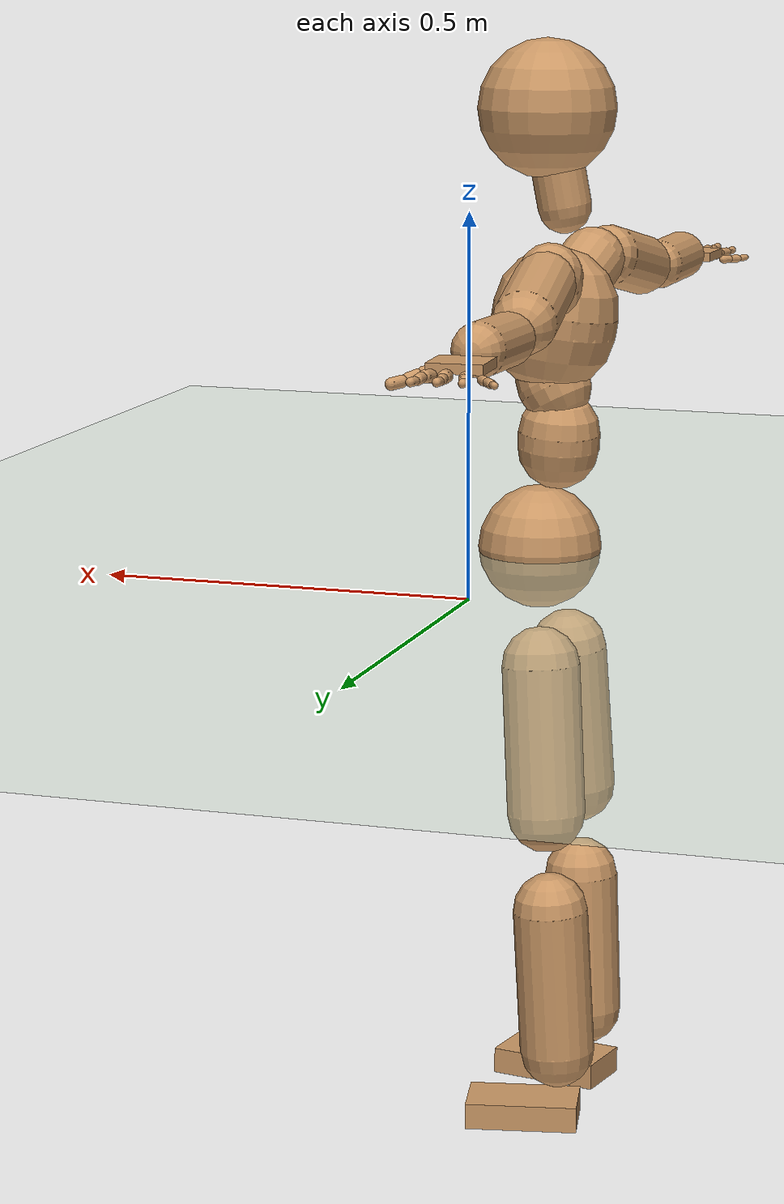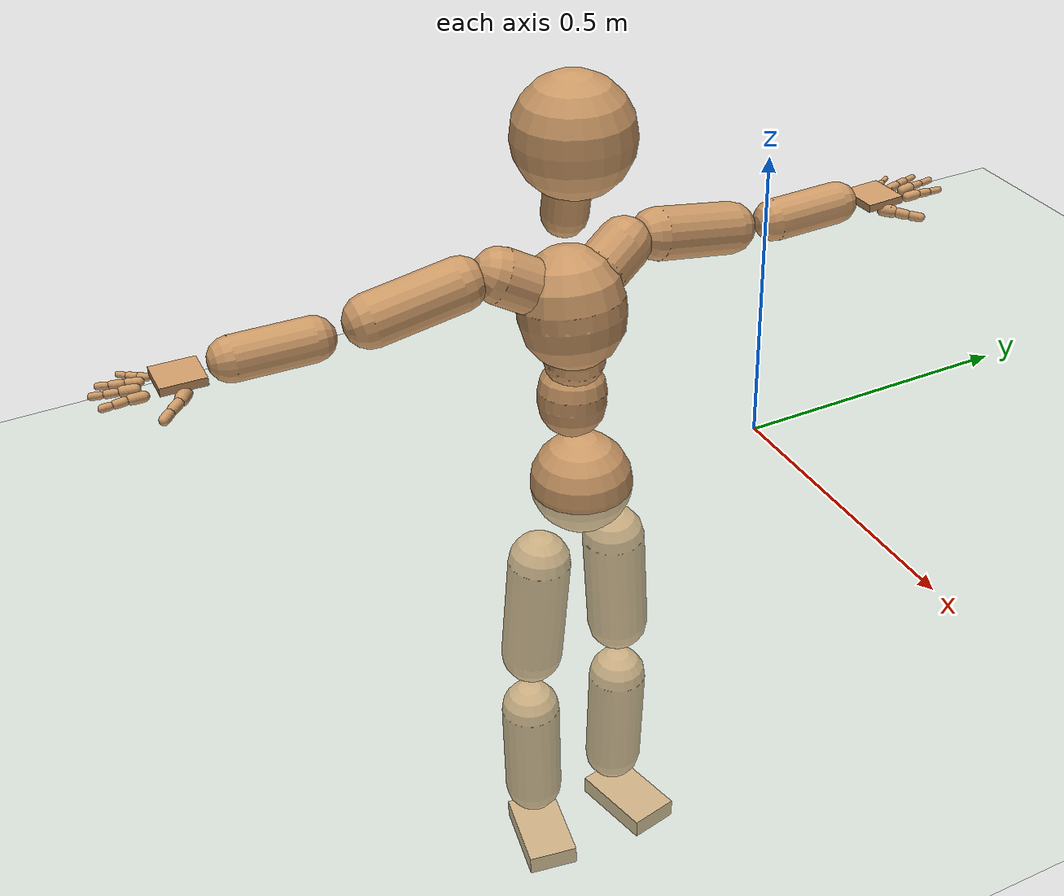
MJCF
<mujoco model="humanoid">
  <compiler coordinate="local" angle="radian"/>
  <default>
    <joint damping="0.0" armature="0.01" stiffness="0.0" limited="true"/>
    <geom conaffinity="1" condim="3" contype="7" margin="0.001" rgba="0.8 0.6 .4 1"/>
  </default>
  <asset>
    <texture type="skybox" builtin="gradient" rgb1=".4 .5 .6" rgb2="0 0 0" width="100" height="100"/>
    <texture builtin="flat" height="1278" mark="cross" markrgb="1 1 1" name="texgeom" random="0.01" rgb1="0.8 0.6 0.4" rgb2="0.8 0.6 0.4" type="cube" width="127"/>
    <texture builtin="checker" height="100" name="texplane" rgb1="0 0 0" rgb2="0.8 0.8 0.8" type="2d" width="100"/>
    <material name="MatPlane" reflectance="0.5" shininess="1" specular="1" texrepeat="60 60" texture="texplane"/>
    <material name="geom" texture="texgeom" texuniform="true"/>
  </asset>
  <worldbody>
    <light cutoff="100" diffuse="1 1 1" dir="-0 0 -1.3" directional="true" exponent="1" pos="0 0 1.3" specular=".1 .1 .1"/>
    <geom conaffinity="1" condim="3" name="floor" pos="0 0 0" rgba="0.8 0.9 0.8 1" size="100 100 .2" type="plane" material="MatPlane"/>
    <body name="Pelvis" pos="0.0003 -0.3356 0.0061">
      <freejoint name="Pelvis"/>
      <geom type="sphere" contype="1" conaffinity="1" density="500" size="0.0850" pos="0.0000 0.0000 0.0000" name="Pelvis"/>
      <body name="L_Hip" pos="-0.0181 0.0658 -0.083">
        <joint name="L_Hip_x" type="hinge" pos="0 0 0" axis="1 0 0" stiffness="800" damping="80" armature="0.02" range="-180.0000 180.0000"/>
        <joint name="L_Hip_y" type="hinge" pos="0 0 0" axis="0 1 0" stiffness="800" damping="80" armature="0.02" range="-180.0000 180.0000"/>
        <joint name="L_Hip_z" type="hinge" pos="0 0 0" axis="0 0 1" stiffness="800" damping="80" armature="0.02" range="-180.0000 180.0000"/>
        <geom type="capsule" contype="1" conaffinity="1" density="500" fromto="-0.0045 0.0049 -0.0685 -0.0180 0.0195 -0.2741" size="0.0535" name="L_Hip"/>
        <body name="L_Knee" pos="-0.0225 0.0244 -0.3427">
          <joint name="L_Knee_x" type="hinge" pos="0 0 0" axis="1 0 0" stiffness="800" damping="80" armature="0.02" range="-180.0000 180.0000"/>
          <joint name="L_Knee_y" type="hinge" pos="0 0 0" axis="0 1 0" stiffness="800" damping="80" armature="0.02" range="-180.0000 180.0000"/>
          <joint name="L_Knee_z" type="hinge" pos="0 0 0" axis="0 0 1" stiffness="800" damping="80" armature="0.02" range="-180.0000 180.0000"/>
          <geom type="capsule" contype="1" conaffinity="1" density="500" fromto="-0.0034 -0.0017 -0.0682 -0.0135 -0.0069 -0.2729" size="0.0516" name="L_Knee"/>
          <body name="L_Ankle" pos="-0.0169 -0.0086 -0.3412">
            <joint name="L_Ankle_x" type="hinge" pos="0 0 0" axis="1 0 0" stiffness="800" damping="80" armature="0.02" range="-180.0000 180.0000"/>
            <joint name="L_Ankle_y" type="hinge" pos="0 0 0" axis="0 1 0" stiffness="800" damping="80" armature="0.02" range="-180.0000 180.0000"/>
            <joint name="L_Ankle_z" type="hinge" pos="0 0 0" axis="0 0 1" stiffness="800" damping="80" armature="0.02" range="-180.0000 180.0000"/>
            <geom type="box" contype="1" conaffinity="1" density="500" pos="0.0498 0.0102 -0.0196" size="0.0774 0.0441 0.018" quat="0.9949 0.0000 0.0000 0.1013" name="L_Ankle"/>
            <body name="L_Toe" pos="0.0996 0.0205 -0.0393">
              <joint name="L_Toe_x" type="hinge" pos="0 0 0" axis="1 0 0" stiffness="500" damping="50" armature="0.02" range="-180.0000 180.0000"/>
              <joint name="L_Toe_y" type="hinge" pos="0 0 0" axis="0 1 0" stiffness="500" damping="50" armature="0.02" range="-180.0000 180.0000"/>
              <joint name="L_Toe_z" type="hinge" pos="0 0 0" axis="0 0 1" stiffness="500" damping="50" armature="0.02" range="-180.0000 180.0000"/>
              <geom type="box" contype="1" conaffinity="1" density="500" pos="0.0000 0.0000 0.0210" size="0.0009 0.0022 0.001" quat="0.9941 0.0000 0.0000 0.1088" name="L_Toe"/>
            </body>
          </body>
        </body>
      </body>
      <body name="R_Hip" pos="-0.0196 -0.0648 -0.0896">
        <joint name="R_Hip_x" type="hinge" pos="0 0 0" axis="1 0 0" stiffness="800" damping="80" armature="0.02" range="-180.0000 180.0000"/>
        <joint name="R_Hip_y" type="hinge" pos="0 0 0" axis="0 1 0" stiffness="800" damping="80" armature="0.02" range="-180.0000 180.0000"/>
        <joint name="R_Hip_z" type="hinge" pos="0 0 0" axis="0 0 1" stiffness="800" damping="80" armature="0.02" range="-180.0000 180.0000"/>
        <geom type="capsule" contype="1" conaffinity="1" density="500" fromto="-0.0033 -0.0056 -0.0676 -0.0134 -0.0224 -0.2705" size="0.0533" name="R_Hip"/>
        <body name="R_Knee" pos="-0.0167 -0.028 -0.3381">
          <joint name="R_Knee_x" type="hinge" pos="0 0 0" axis="1 0 0" stiffness="800" damping="80" armature="0.02" range="-180.0000 180.0000"/>
          <joint name="R_Knee_y" type="hinge" pos="0 0 0" axis="0 1 0" stiffness="800" damping="80" armature="0.02" range="-180.0000 180.0000"/>
          <joint name="R_Knee_z" type="hinge" pos="0 0 0" axis="0 0 1" stiffness="800" damping="80" armature="0.02" range="-180.0000 180.0000"/>
          <geom type="capsule" contype="1" conaffinity="1" density="500" fromto="-0.0026 0.0009 -0.0666 -0.0104 0.0037 -0.2665" size="0.0516" name="R_Knee"/>
          <body name="R_Ankle" pos="-0.013 0.0046 -0.3331">
            <joint name="R_Ankle_x" type="hinge" pos="0 0 0" axis="1 0 0" stiffness="800" damping="80" armature="0.02" range="-180.0000 180.0000"/>
            <joint name="R_Ankle_y" type="hinge" pos="0 0 0" axis="0 1 0" stiffness="800" damping="80" armature="0.02" range="-180.0000 180.0000"/>
            <joint name="R_Ankle_z" type="hinge" pos="0 0 0" axis="0 0 1" stiffness="800" damping="80" armature="0.02" range="-180.0000 180.0000"/>
            <geom type="box" contype="1" conaffinity="1" density="500" pos="0.0466 -0.0084 -0.0214" size="0.0774 0.0441 0.0181" quat="0.9960 0.0000 0.0000 -0.0892" name="R_Ankle"/>
            <body name="R_Toe" pos="0.0933 -0.0168 -0.0429">
              <joint name="R_Toe_x" type="hinge" pos="0 0 0" axis="1 0 0" stiffness="500" damping="50" armature="0.02" range="-180.0000 180.0000"/>
              <joint name="R_Toe_y" type="hinge" pos="0 0 0" axis="0 1 0" stiffness="500" damping="50" armature="0.02" range="-180.0000 180.0000"/>
              <joint name="R_Toe_z" type="hinge" pos="0 0 0" axis="0 0 1" stiffness="500" damping="50" armature="0.02" range="-180.0000 180.0000"/>
              <geom type="box" contype="1" conaffinity="1" density="500" pos="0.0000 0.0000 0.0228" size="0.0009 0.0022 0.001" quat="0.9970 0.0000 0.0000 -0.0772" name="R_Toe"/>
            </body>
          </body>
        </body>
      </body>
      <body name="Torso" pos="-0.0217 -0.0044 0.0934">
        <joint name="Torso_x" type="hinge" pos="0 0 0" axis="1 0 0" stiffness="1000" damping="100" armature="0.02" range="-180.0000 180.0000"/>
        <joint name="Torso_y" type="hinge" pos="0 0 0" axis="0 1 0" stiffness="1000" damping="100" armature="0.02" range="-180.0000 180.0000"/>
        <joint name="Torso_z" type="hinge" pos="0 0 0" axis="0 0 1" stiffness="1000" damping="100" armature="0.02" range="-180.0000 180.0000"/>
        <geom type="capsule" contype="1" conaffinity="1" density="500" fromto="-0.0046 0.0048 0.0676 -0.0031 0.0032 0.0451" size="0.0561" name="Torso"/>
        <body name="Spine" pos="-0.0077 0.008 0.1127">
          <joint name="Spine_x" type="hinge" pos="0 0 0" axis="1 0 0" stiffness="1000" damping="100" armature="0.02" range="-180.0000 180.0000"/>
          <joint name="Spine_y" type="hinge" pos="0 0 0" axis="0 1 0" stiffness="1000" damping="100" armature="0.02" range="-180.0000 180.0000"/>
          <joint name="Spine_z" type="hinge" pos="0 0 0" axis="0 0 1" stiffness="1000" damping="100" armature="0.02" range="-180.0000 180.0000"/>
          <geom type="capsule" contype="1" conaffinity="1" density="500" fromto="0.0136 -0.0026 0.0254 0.0091 -0.0017 0.0169" size="0.0502" name="Spine"/>
          <body name="Chest" pos="0.0227 -0.0043 0.0423">
            <joint name="Chest_x" type="hinge" pos="0 0 0" axis="1 0 0" stiffness="1000" damping="100" armature="0.02" range="-180.0000 180.0000"/>
            <joint name="Chest_y" type="hinge" pos="0 0 0" axis="0 1 0" stiffness="1000" damping="100" armature="0.02" range="-180.0000 180.0000"/>
            <joint name="Chest_z" type="hinge" pos="0 0 0" axis="0 0 1" stiffness="1000" damping="100" armature="0.02" range="-180.0000 180.0000"/>
            <geom type="capsule" contype="1" conaffinity="1" density="500" fromto="-0.0130 -0.0015 0.0797 -0.0087 -0.0010 0.0531" size="0.0858" name="Chest"/>
            <body name="Neck" pos="-0.0292 -0.005 0.1871">
              <joint name="Neck_x" type="hinge" pos="0 0 0" axis="1 0 0" stiffness="500" damping="50" armature="0.02" range="-180.0000 180.0000"/>
              <joint name="Neck_y" type="hinge" pos="0 0 0" axis="0 1 0" stiffness="500" damping="50" armature="0.02" range="-180.0000 180.0000"/>
              <joint name="Neck_z" type="hinge" pos="0 0 0" axis="0 0 1" stiffness="500" damping="50" armature="0.02" range="-180.0000 180.0000"/>
              <geom type="capsule" contype="1" conaffinity="1" density="500" fromto="0.0059 0.0015 0.0329 0.0236 0.0061 0.1316" size="0.0366" name="Neck"/>
              <body name="Head" pos="0.0295 0.0076 0.1645">
                <joint name="Head_x" type="hinge" pos="0 0 0" axis="1 0 0" stiffness="500" damping="50" armature="0.02" range="-180.0000 180.0000"/>
                <joint name="Head_y" type="hinge" pos="0 0 0" axis="0 1 0" stiffness="500" damping="50" armature="0.02" range="-180.0000 180.0000"/>
                <joint name="Head_z" type="hinge" pos="0 0 0" axis="0 0 1" stiffness="500" damping="50" armature="0.02" range="-180.0000 180.0000"/>
                <geom type="sphere" contype="1" conaffinity="1" density="500" size="0.0942" pos="0.0000 0.0000 0.0000" name="Head"/>
              </body>
            </body>
            <body name="L_Thorax" pos="-0.015 0.0437 0.1076">
              <joint name="L_Thorax_x" type="hinge" pos="0 0 0" axis="1 0 0" stiffness="500" damping="50" armature="0.02" range="-180.0000 180.0000"/>
              <joint name="L_Thorax_y" type="hinge" pos="0 0 0" axis="0 1 0" stiffness="500" damping="50" armature="0.02" range="-180.0000 180.0000"/>
              <joint name="L_Thorax_z" type="hinge" pos="0 0 0" axis="0 0 1" stiffness="500" damping="50" armature="0.02" range="-180.0000 180.0000"/>
              <geom type="capsule" contype="1" conaffinity="1" density="500" fromto="-0.0045 0.0145 0.0078 -0.0182 0.0581 0.0311" size="0.044" name="L_Thorax"/>
              <body name="L_Shoulder" pos="-0.0227 0.0726 0.0388">
                <joint name="L_Shoulder_x" type="hinge" pos="0 0 0" axis="1 0 0" stiffness="500" damping="50" armature="0.02" range="-180.0000 180.0000"/>
                <joint name="L_Shoulder_y" type="hinge" pos="0 0 0" axis="0 1 0" stiffness="500" damping="50" armature="0.02" range="-180.0000 180.0000"/>
                <joint name="L_Shoulder_z" type="hinge" pos="0 0 0" axis="0 0 1" stiffness="500" damping="50" armature="0.02" range="-180.0000 180.0000"/>
                <geom type="capsule" contype="1" conaffinity="1" density="500" fromto="-0.0051 0.0482 -0.0104 -0.0205 0.1929 -0.0415" size="0.0423" name="L_Shoulder"/>
                <body name="L_Elbow" pos="-0.0256 0.2411 -0.0518">
                  <joint name="L_Elbow_x" type="hinge" pos="0 0 0" axis="1 0 0" stiffness="500" damping="50" armature="0.02" range="-720.0000 720.0000"/>
                  <joint name="L_Elbow_y" type="hinge" pos="0 0 0" axis="0 1 0" stiffness="500" damping="50" armature="0.02" range="-720.0000 720.0000"/>
                  <joint name="L_Elbow_z" type="hinge" pos="0 0 0" axis="0 0 1" stiffness="500" damping="50" armature="0.02" range="-720.0000 720.0000"/>
                  <geom type="capsule" contype="1" conaffinity="1" density="500" fromto="0.0004 0.0405 0.0010 0.0014 0.1620 0.0040" size="0.0346" name="L_Elbow"/>
                  <body name="L_Wrist" pos="0.0018 0.2025 0.0049">
                    <joint name="L_Wrist_x" type="hinge" pos="0 0 0" axis="1 0 0" stiffness="300" damping="30" armature="0.02" range="-180.0000 180.0000"/>
                    <joint name="L_Wrist_y" type="hinge" pos="0 0 0" axis="0 1 0" stiffness="300" damping="30" armature="0.02" range="-180.0000 180.0000"/>
                    <joint name="L_Wrist_z" type="hinge" pos="0 0 0" axis="0 0 1" stiffness="300" damping="30" armature="0.02" range="-180.0000 180.0000"/>
                    <geom type="box" contype="1" conaffinity="1" density="500" pos="-0.0020 0.0367 -0.0081" size="0.0348 0.0355 0.0064" quat="0.7264 0.0000 0.0000 -0.6873" name="L_Wrist"/>
                    <body name="L_Index1" pos="0.0181 0.0867 -0.0141">
                      <joint name="L_Index1_x" type="hinge" pos="0 0 0" axis="1 0 0" stiffness="100" damping="10" armature="0.02" range="-180.0000 180.0000"/>
                      <joint name="L_Index1_y" type="hinge" pos="0 0 0" axis="0 1 0" stiffness="100" damping="10" armature="0.02" range="-180.0000 180.0000"/>
                      <joint name="L_Index1_z" type="hinge" pos="0 0 0" axis="0 0 1" stiffness="100" damping="10" armature="0.02" range="-180.0000 180.0000"/>
                      <geom type="capsule" contype="1" conaffinity="1" density="500" fromto="0.0005 0.0058 0.0005 0.0021 0.0233 0.0019" size="0.0081" name="L_Index1"/>
                      <body name="L_Index2" pos="0.0027 0.0292 0.0024">
                        <joint name="L_Index2_x" type="hinge" pos="0 0 0" axis="1 0 0" stiffness="100" damping="10" armature="0.02" range="-180.0000 180.0000"/>
                        <joint name="L_Index2_y" type="hinge" pos="0 0 0" axis="0 1 0" stiffness="100" damping="10" armature="0.02" range="-180.0000 180.0000"/>
                        <joint name="L_Index2_z" type="hinge" pos="0 0 0" axis="0 0 1" stiffness="100" damping="10" armature="0.02" range="-180.0000 180.0000"/>
                        <geom type="capsule" contype="1" conaffinity="1" density="500" fromto="0.0001 0.0042 -0.0003 0.0003 0.0166 -0.0011" size="0.0068" name="L_Index2"/>
                        <body name="L_Index3" pos="0.0004 0.0208 -0.0014">
                          <joint name="L_Index3_x" type="hinge" pos="0 0 0" axis="1 0 0" stiffness="100" damping="10" armature="0.02" range="-180.0000 180.0000"/>
                          <joint name="L_Index3_y" type="hinge" pos="0 0 0" axis="0 1 0" stiffness="100" damping="10" armature="0.02" range="-180.0000 180.0000"/>
                          <joint name="L_Index3_z" type="hinge" pos="0 0 0" axis="0 0 1" stiffness="100" damping="10" armature="0.02" range="-180.0000 180.0000"/>
                          <geom type="capsule" contype="1" conaffinity="1" density="500" fromto="0.0005 0.0046 0.0001 0.0019 0.0182 0.0005" size="0.0056" name="L_Index3"/>
                        </body>
                      </body>
                    </body>
                    <body name="L_Middle1" pos="-0.0023 0.0929 -0.0123">
                      <joint name="L_Middle1_x" type="hinge" pos="0 0 0" axis="1 0 0" stiffness="100" damping="10" armature="0.02" range="-180.0000 180.0000"/>
                      <joint name="L_Middle1_y" type="hinge" pos="0 0 0" axis="0 1 0" stiffness="100" damping="10" armature="0.02" range="-180.0000 180.0000"/>
                      <joint name="L_Middle1_z" type="hinge" pos="0 0 0" axis="0 0 1" stiffness="100" damping="10" armature="0.02" range="-180.0000 180.0000"/>
                      <geom type="capsule" contype="1" conaffinity="1" density="500" fromto="-0.0007 0.0055 0.0002 -0.0029 0.0220 0.0009" size="0.0083" name="L_Middle1"/>
                      <body name="L_Middle2" pos="-0.0037 0.0274 0.0011">
                        <joint name="L_Middle2_x" type="hinge" pos="0 0 0" axis="1 0 0" stiffness="100" damping="10" armature="0.02" range="-180.0000 180.0000"/>
                        <joint name="L_Middle2_y" type="hinge" pos="0 0 0" axis="0 1 0" stiffness="100" damping="10" armature="0.02" range="-180.0000 180.0000"/>
                        <joint name="L_Middle2_z" type="hinge" pos="0 0 0" axis="0 0 1" stiffness="100" damping="10" armature="0.02" range="-180.0000 180.0000"/>
                        <geom type="capsule" contype="1" conaffinity="1" density="500" fromto="-0.0007 0.0043 -0.0001 -0.0028 0.0171 -0.0003" size="0.0063" name="L_Middle2"/>
                        <body name="L_Middle3" pos="-0.0035 0.0214 -0.0004">
                          <joint name="L_Middle3_x" type="hinge" pos="0 0 0" axis="1 0 0" stiffness="100" damping="10" armature="0.02" range="-180.0000 180.0000"/>
                          <joint name="L_Middle3_y" type="hinge" pos="0 0 0" axis="0 1 0" stiffness="100" damping="10" armature="0.02" range="-180.0000 180.0000"/>
                          <joint name="L_Middle3_z" type="hinge" pos="0 0 0" axis="0 0 1" stiffness="100" damping="10" armature="0.02" range="-180.0000 180.0000"/>
                          <geom type="capsule" contype="1" conaffinity="1" density="500" fromto="-0.0003 0.0047 0.0003 -0.0012 0.0187 0.0013" size="0.0055" name="L_Middle3"/>
                        </body>
                      </body>
                    </body>
                    <body name="L_Pinky1" pos="-0.0369 0.0705 -0.0191">
                      <joint name="L_Pinky1_x" type="hinge" pos="0 0 0" axis="1 0 0" stiffness="100" damping="10" armature="0.02" range="-180.0000 180.0000"/>
                      <joint name="L_Pinky1_y" type="hinge" pos="0 0 0" axis="0 1 0" stiffness="100" damping="10" armature="0.02" range="-180.0000 180.0000"/>
                      <joint name="L_Pinky1_z" type="hinge" pos="0 0 0" axis="0 0 1" stiffness="100" damping="10" armature="0.02" range="-180.0000 180.0000"/>
                      <geom type="capsule" contype="1" conaffinity="1" density="500" fromto="-0.0022 0.0026 -0.0001 -0.0087 0.0106 -0.0003" size="0.006" name="L_Pinky1"/>
                      <body name="L_Pinky2" pos="-0.0109 0.0132 -0.0003">
                        <joint name="L_Pinky2_x" type="hinge" pos="0 0 0" axis="1 0 0" stiffness="100" damping="10" armature="0.02" range="-180.0000 180.0000"/>
                        <joint name="L_Pinky2_y" type="hinge" pos="0 0 0" axis="0 1 0" stiffness="100" damping="10" armature="0.02" range="-180.0000 180.0000"/>
                        <joint name="L_Pinky2_z" type="hinge" pos="0 0 0" axis="0 0 1" stiffness="100" damping="10" armature="0.02" range="-180.0000 180.0000"/>
                        <geom type="capsule" contype="1" conaffinity="1" density="500" fromto="-0.0021 0.0027 -0.0001 -0.0086 0.0110 -0.0005" size="0.0058" name="L_Pinky2"/>
                        <body name="L_Pinky3" pos="-0.0107 0.0137 -0.0007">
                          <joint name="L_Pinky3_x" type="hinge" pos="0 0 0" axis="1 0 0" stiffness="100" damping="10" armature="0.02" range="-180.0000 180.0000"/>
                          <joint name="L_Pinky3_y" type="hinge" pos="0 0 0" axis="0 1 0" stiffness="100" damping="10" armature="0.02" range="-180.0000 180.0000"/>
                          <joint name="L_Pinky3_z" type="hinge" pos="0 0 0" axis="0 0 1" stiffness="100" damping="10" armature="0.02" range="-180.0000 180.0000"/>
                          <geom type="capsule" contype="1" conaffinity="1" density="500" fromto="-0.0017 0.0031 0.0003 -0.0070 0.0126 0.0011" size="0.0045" name="L_Pinky3"/>
                        </body>
                      </body>
                    </body>
                    <body name="L_Ring1" pos="-0.0225 0.0822 -0.0146">
                      <joint name="L_Ring1_x" type="hinge" pos="0 0 0" axis="1 0 0" stiffness="100" damping="10" armature="0.02" range="-180.0000 180.0000"/>
                      <joint name="L_Ring1_y" type="hinge" pos="0 0 0" axis="0 1 0" stiffness="100" damping="10" armature="0.02" range="-180.0000 180.0000"/>
                      <joint name="L_Ring1_z" type="hinge" pos="0 0 0" axis="0 0 1" stiffness="100" damping="10" armature="0.02" range="-180.0000 180.0000"/>
                      <geom type="capsule" contype="1" conaffinity="1" density="500" fromto="-0.0010 0.0050 0.0003 -0.0038 0.0199 0.0013" size="0.0071" name="L_Ring1"/>
                      <body name="L_Ring2" pos="-0.0048 0.0249 0.0016">
                        <joint name="L_Ring2_x" type="hinge" pos="0 0 0" axis="1 0 0" stiffness="100" damping="10" armature="0.02" range="-180.0000 180.0000"/>
                        <joint name="L_Ring2_y" type="hinge" pos="0 0 0" axis="0 1 0" stiffness="100" damping="10" armature="0.02" range="-180.0000 180.0000"/>
                        <joint name="L_Ring2_z" type="hinge" pos="0 0 0" axis="0 0 1" stiffness="100" damping="10" armature="0.02" range="-180.0000 180.0000"/>
                        <geom type="capsule" contype="1" conaffinity="1" density="500" fromto="-0.0013 0.0041 -0.0001 -0.0052 0.0164 -0.0006" size="0.0066" name="L_Ring2"/>
                        <body name="L_Ring3" pos="-0.0065 0.0205 -0.0007">
                          <joint name="L_Ring3_x" type="hinge" pos="0 0 0" axis="1 0 0" stiffness="100" damping="10" armature="0.02" range="-180.0000 180.0000"/>
                          <joint name="L_Ring3_y" type="hinge" pos="0 0 0" axis="0 1 0" stiffness="100" damping="10" armature="0.02" range="-180.0000 180.0000"/>
                          <joint name="L_Ring3_z" type="hinge" pos="0 0 0" axis="0 0 1" stiffness="100" damping="10" armature="0.02" range="-180.0000 180.0000"/>
                          <geom type="capsule" contype="1" conaffinity="1" density="500" fromto="-0.0009 0.0045 0.0003 -0.0036 0.0180 0.0010" size="0.0052" name="L_Ring3"/>
                        </body>
                      </body>
                    </body>
                    <body name="L_Thumb1" pos="0.0233 0.0345 -0.0205">
                      <joint name="L_Thumb1_x" type="hinge" pos="0 0 0" axis="1 0 0" stiffness="100" damping="10" armature="0.02" range="-180.0000 180.0000"/>
                      <joint name="L_Thumb1_y" type="hinge" pos="0 0 0" axis="0 1 0" stiffness="100" damping="10" armature="0.02" range="-180.0000 180.0000"/>
                      <joint name="L_Thumb1_z" type="hinge" pos="0 0 0" axis="0 0 1" stiffness="100" damping="10" armature="0.02" range="-180.0000 180.0000"/>
                      <geom type="capsule" contype="1" conaffinity="1" density="500" fromto="0.0043 0.0030 0.0001 0.0172 0.0120 0.0006" size="0.0104" name="L_Thumb1"/>
                      <body name="L_Thumb2" pos="0.0215 0.015 0.0007">
                        <joint name="L_Thumb2_x" type="hinge" pos="0 0 0" axis="1 0 0" stiffness="100" damping="10" armature="0.02" range="-180.0000 180.0000"/>
                        <joint name="L_Thumb2_y" type="hinge" pos="0 0 0" axis="0 1 0" stiffness="100" damping="10" armature="0.02" range="-180.0000 180.0000"/>
                        <joint name="L_Thumb2_z" type="hinge" pos="0 0 0" axis="0 0 1" stiffness="100" damping="10" armature="0.02" range="-180.0000 180.0000"/>
                        <geom type="capsule" contype="1" conaffinity="1" density="500" fromto="0.0026 0.0037 -0.0010 0.0104 0.0147 -0.0041" size="0.0082" name="L_Thumb2"/>
                        <body name="L_Thumb3" pos="0.013 0.0184 -0.0051">
                          <joint name="L_Thumb3_x" type="hinge" pos="0 0 0" axis="1 0 0" stiffness="100" damping="10" armature="0.02" range="-180.0000 180.0000"/>
                          <joint name="L_Thumb3_y" type="hinge" pos="0 0 0" axis="0 1 0" stiffness="100" damping="10" armature="0.02" range="-180.0000 180.0000"/>
                          <joint name="L_Thumb3_z" type="hinge" pos="0 0 0" axis="0 0 1" stiffness="100" damping="10" armature="0.02" range="-180.0000 180.0000"/>
                          <geom type="capsule" contype="1" conaffinity="1" density="500" fromto="0.0030 0.0041 -0.0006 0.0120 0.0163 -0.0025" size="0.0077" name="L_Thumb3"/>
                        </body>
                      </body>
                    </body>
                  </body>
                </body>
              </body>
            </body>
            <body name="R_Thorax" pos="-0.0208 -0.0461 0.1036">
              <joint name="R_Thorax_x" type="hinge" pos="0 0 0" axis="1 0 0" stiffness="500" damping="50" armature="0.02" range="-180.0000 180.0000"/>
              <joint name="R_Thorax_y" type="hinge" pos="0 0 0" axis="0 1 0" stiffness="500" damping="50" armature="0.02" range="-180.0000 180.0000"/>
              <joint name="R_Thorax_z" type="hinge" pos="0 0 0" axis="0 0 1" stiffness="500" damping="50" armature="0.02" range="-180.0000 180.0000"/>
              <geom type="capsule" contype="1" conaffinity="1" density="500" fromto="-0.0034 -0.0155 0.0084 -0.0135 -0.0622 0.0338" size="0.045" name="R_Thorax"/>
              <body name="R_Shoulder" pos="-0.0168 -0.0777 0.0422">
                <joint name="R_Shoulder_x" type="hinge" pos="0 0 0" axis="1 0 0" stiffness="500" damping="50" armature="0.02" range="-180.0000 180.0000"/>
                <joint name="R_Shoulder_y" type="hinge" pos="0 0 0" axis="0 1 0" stiffness="500" damping="50" armature="0.02" range="-180.0000 180.0000"/>
                <joint name="R_Shoulder_z" type="hinge" pos="0 0 0" axis="0 0 1" stiffness="500" damping="50" armature="0.02" range="-180.0000 180.0000"/>
                <geom type="capsule" contype="1" conaffinity="1" density="500" fromto="-0.0038 -0.0466 -0.0096 -0.0154 -0.1862 -0.0384" size="0.0426" name="R_Shoulder"/>
                <body name="R_Elbow" pos="-0.0192 -0.2328 -0.048">
                  <joint name="R_Elbow_x" type="hinge" pos="0 0 0" axis="1 0 0" stiffness="500" damping="50" armature="0.02" range="-720.0000 720.0000"/>
                  <joint name="R_Elbow_y" type="hinge" pos="0 0 0" axis="0 1 0" stiffness="500" damping="50" armature="0.02" range="-720.0000 720.0000"/>
                  <joint name="R_Elbow_z" type="hinge" pos="0 0 0" axis="0 0 1" stiffness="500" damping="50" armature="0.02" range="-720.0000 720.0000"/>
                  <geom type="capsule" contype="1" conaffinity="1" density="500" fromto="-0.0012 -0.0407 0.0002 -0.0047 -0.1627 0.0008" size="0.0348" name="R_Elbow"/>
                  <body name="R_Wrist" pos="-0.0059 -0.2034 0.001">
                    <joint name="R_Wrist_x" type="hinge" pos="0 0 0" axis="1 0 0" stiffness="300" damping="30" armature="0.02" range="-180.0000 180.0000"/>
                    <joint name="R_Wrist_y" type="hinge" pos="0 0 0" axis="0 1 0" stiffness="300" damping="30" armature="0.02" range="-180.0000 180.0000"/>
                    <joint name="R_Wrist_z" type="hinge" pos="0 0 0" axis="0 0 1" stiffness="300" damping="30" armature="0.02" range="-180.0000 180.0000"/>
                    <geom type="box" contype="1" conaffinity="1" density="500" pos="-0.0014 -0.0362 -0.0076" size="0.0348 0.0331 0.0066" quat="0.7208 0.0000 0.0000 0.6931" name="R_Wrist"/>
                    <body name="R_Index1" pos="0.0193 -0.0859 -0.0133">
                      <joint name="R_Index1_x" type="hinge" pos="0 0 0" axis="1 0 0" stiffness="100" damping="10" armature="0.02" range="-180.0000 180.0000"/>
                      <joint name="R_Index1_y" type="hinge" pos="0 0 0" axis="0 1 0" stiffness="100" damping="10" armature="0.02" range="-180.0000 180.0000"/>
                      <joint name="R_Index1_z" type="hinge" pos="0 0 0" axis="0 0 1" stiffness="100" damping="10" armature="0.02" range="-180.0000 180.0000"/>
                      <geom type="capsule" contype="1" conaffinity="1" density="500" fromto="0.0005 -0.0058 0.0005 0.0021 -0.0233 0.0019" size="0.0081" name="R_Index1"/>
                      <body name="R_Index2" pos="0.0027 -0.0292 0.0024">
                        <joint name="R_Index2_x" type="hinge" pos="0 0 0" axis="1 0 0" stiffness="100" damping="10" armature="0.02" range="-180.0000 180.0000"/>
                        <joint name="R_Index2_y" type="hinge" pos="0 0 0" axis="0 1 0" stiffness="100" damping="10" armature="0.02" range="-180.0000 180.0000"/>
                        <joint name="R_Index2_z" type="hinge" pos="0 0 0" axis="0 0 1" stiffness="100" damping="10" armature="0.02" range="-180.0000 180.0000"/>
                        <geom type="capsule" contype="1" conaffinity="1" density="500" fromto="0.0001 -0.0042 -0.0003 0.0003 -0.0166 -0.0011" size="0.0068" name="R_Index2"/>
                        <body name="R_Index3" pos="0.0004 -0.0208 -0.0014">
                          <joint name="R_Index3_x" type="hinge" pos="0 0 0" axis="1 0 0" stiffness="100" damping="10" armature="0.02" range="-180.0000 180.0000"/>
                          <joint name="R_Index3_y" type="hinge" pos="0 0 0" axis="0 1 0" stiffness="100" damping="10" armature="0.02" range="-180.0000 180.0000"/>
                          <joint name="R_Index3_z" type="hinge" pos="0 0 0" axis="0 0 1" stiffness="100" damping="10" armature="0.02" range="-180.0000 180.0000"/>
                          <geom type="capsule" contype="1" conaffinity="1" density="500" fromto="0.0005 -0.0038 0.0001 0.0019 -0.0150 0.0005" size="0.0059" name="R_Index3"/>
                        </body>
                      </body>
                    </body>
                    <body name="R_Middle1" pos="-0.001 -0.092 -0.0115">
                      <joint name="R_Middle1_x" type="hinge" pos="0 0 0" axis="1 0 0" stiffness="100" damping="10" armature="0.02" range="-180.0000 180.0000"/>
                      <joint name="R_Middle1_y" type="hinge" pos="0 0 0" axis="0 1 0" stiffness="100" damping="10" armature="0.02" range="-180.0000 180.0000"/>
                      <joint name="R_Middle1_z" type="hinge" pos="0 0 0" axis="0 0 1" stiffness="100" damping="10" armature="0.02" range="-180.0000 180.0000"/>
                      <geom type="capsule" contype="1" conaffinity="1" density="500" fromto="-0.0007 -0.0055 0.0002 -0.0029 -0.0220 0.0009" size="0.0083" name="R_Middle1"/>
                      <body name="R_Middle2" pos="-0.0037 -0.0274 0.0011">
                        <joint name="R_Middle2_x" type="hinge" pos="0 0 0" axis="1 0 0" stiffness="100" damping="10" armature="0.02" range="-180.0000 180.0000"/>
                        <joint name="R_Middle2_y" type="hinge" pos="0 0 0" axis="0 1 0" stiffness="100" damping="10" armature="0.02" range="-180.0000 180.0000"/>
                        <joint name="R_Middle2_z" type="hinge" pos="0 0 0" axis="0 0 1" stiffness="100" damping="10" armature="0.02" range="-180.0000 180.0000"/>
                        <geom type="capsule" contype="1" conaffinity="1" density="500" fromto="-0.0007 -0.0043 -0.0001 -0.0028 -0.0171 -0.0003" size="0.0063" name="R_Middle2"/>
                        <body name="R_Middle3" pos="-0.0035 -0.0214 -0.0004">
                          <joint name="R_Middle3_x" type="hinge" pos="0 0 0" axis="1 0 0" stiffness="100" damping="10" armature="0.02" range="-180.0000 180.0000"/>
                          <joint name="R_Middle3_y" type="hinge" pos="0 0 0" axis="0 1 0" stiffness="100" damping="10" armature="0.02" range="-180.0000 180.0000"/>
                          <joint name="R_Middle3_z" type="hinge" pos="0 0 0" axis="0 0 1" stiffness="100" damping="10" armature="0.02" range="-180.0000 180.0000"/>
                          <geom type="capsule" contype="1" conaffinity="1" density="500" fromto="-0.0003 -0.0039 0.0003 -0.0012 -0.0155 0.0013" size="0.0058" name="R_Middle3"/>
                        </body>
                      </body>
                    </body>
                    <body name="R_Pinky1" pos="-0.0357 -0.0696 -0.0182">
                      <joint name="R_Pinky1_x" type="hinge" pos="0 0 0" axis="1 0 0" stiffness="100" damping="10" armature="0.02" range="-180.0000 180.0000"/>
                      <joint name="R_Pinky1_y" type="hinge" pos="0 0 0" axis="0 1 0" stiffness="100" damping="10" armature="0.02" range="-180.0000 180.0000"/>
                      <joint name="R_Pinky1_z" type="hinge" pos="0 0 0" axis="0 0 1" stiffness="100" damping="10" armature="0.02" range="-180.0000 180.0000"/>
                      <geom type="capsule" contype="1" conaffinity="1" density="500" fromto="-0.0022 -0.0026 -0.0001 -0.0087 -0.0106 -0.0003" size="0.006" name="R_Pinky1"/>
                      <body name="R_Pinky2" pos="-0.0109 -0.0132 -0.0003">
                        <joint name="R_Pinky2_x" type="hinge" pos="0 0 0" axis="1 0 0" stiffness="100" damping="10" armature="0.02" range="-180.0000 180.0000"/>
                        <joint name="R_Pinky2_y" type="hinge" pos="0 0 0" axis="0 1 0" stiffness="100" damping="10" armature="0.02" range="-180.0000 180.0000"/>
                        <joint name="R_Pinky2_z" type="hinge" pos="0 0 0" axis="0 0 1" stiffness="100" damping="10" armature="0.02" range="-180.0000 180.0000"/>
                        <geom type="capsule" contype="1" conaffinity="1" density="500" fromto="-0.0021 -0.0027 -0.0001 -0.0086 -0.0110 -0.0005" size="0.0058" name="R_Pinky2"/>
                        <body name="R_Pinky3" pos="-0.0107 -0.0137 -0.0007">
                          <joint name="R_Pinky3_x" type="hinge" pos="0 0 0" axis="1 0 0" stiffness="100" damping="10" armature="0.02" range="-180.0000 180.0000"/>
                          <joint name="R_Pinky3_y" type="hinge" pos="0 0 0" axis="0 1 0" stiffness="100" damping="10" armature="0.02" range="-180.0000 180.0000"/>
                          <joint name="R_Pinky3_z" type="hinge" pos="0 0 0" axis="0 0 1" stiffness="100" damping="10" armature="0.02" range="-180.0000 180.0000"/>
                          <geom type="capsule" contype="1" conaffinity="1" density="500" fromto="-0.0017 -0.0023 0.0003 -0.0070 -0.0094 0.0011" size="0.0048" name="R_Pinky3"/>
                        </body>
                      </body>
                    </body>
                    <body name="R_Ring1" pos="-0.0213 -0.0813 -0.0138">
                      <joint name="R_Ring1_x" type="hinge" pos="0 0 0" axis="1 0 0" stiffness="100" damping="10" armature="0.02" range="-180.0000 180.0000"/>
                      <joint name="R_Ring1_y" type="hinge" pos="0 0 0" axis="0 1 0" stiffness="100" damping="10" armature="0.02" range="-180.0000 180.0000"/>
                      <joint name="R_Ring1_z" type="hinge" pos="0 0 0" axis="0 0 1" stiffness="100" damping="10" armature="0.02" range="-180.0000 180.0000"/>
                      <geom type="capsule" contype="1" conaffinity="1" density="500" fromto="-0.0010 -0.0050 0.0003 -0.0038 -0.0199 0.0013" size="0.0071" name="R_Ring1"/>
                      <body name="R_Ring2" pos="-0.0048 -0.0249 0.0016">
                        <joint name="R_Ring2_x" type="hinge" pos="0 0 0" axis="1 0 0" stiffness="100" damping="10" armature="0.02" range="-180.0000 180.0000"/>
                        <joint name="R_Ring2_y" type="hinge" pos="0 0 0" axis="0 1 0" stiffness="100" damping="10" armature="0.02" range="-180.0000 180.0000"/>
                        <joint name="R_Ring2_z" type="hinge" pos="0 0 0" axis="0 0 1" stiffness="100" damping="10" armature="0.02" range="-180.0000 180.0000"/>
                        <geom type="capsule" contype="1" conaffinity="1" density="500" fromto="-0.0013 -0.0041 -0.0001 -0.0052 -0.0164 -0.0006" size="0.0066" name="R_Ring2"/>
                        <body name="R_Ring3" pos="-0.0065 -0.0205 -0.0007">
                          <joint name="R_Ring3_x" type="hinge" pos="0 0 0" axis="1 0 0" stiffness="100" damping="10" armature="0.02" range="-180.0000 180.0000"/>
                          <joint name="R_Ring3_y" type="hinge" pos="0 0 0" axis="0 1 0" stiffness="100" damping="10" armature="0.02" range="-180.0000 180.0000"/>
                          <joint name="R_Ring3_z" type="hinge" pos="0 0 0" axis="0 0 1" stiffness="100" damping="10" armature="0.02" range="-180.0000 180.0000"/>
                          <geom type="capsule" contype="1" conaffinity="1" density="500" fromto="-0.0009 -0.0037 0.0003 -0.0036 -0.0148 0.0010" size="0.0054" name="R_Ring3"/>
                        </body>
                      </body>
                    </body>
                    <body name="R_Thumb1" pos="0.0245 -0.0336 -0.0196">
                      <joint name="R_Thumb1_x" type="hinge" pos="0 0 0" axis="1 0 0" stiffness="100" damping="10" armature="0.02" range="-180.0000 180.0000"/>
                      <joint name="R_Thumb1_y" type="hinge" pos="0 0 0" axis="0 1 0" stiffness="100" damping="10" armature="0.02" range="-180.0000 180.0000"/>
                      <joint name="R_Thumb1_z" type="hinge" pos="0 0 0" axis="0 0 1" stiffness="100" damping="10" armature="0.02" range="-180.0000 180.0000"/>
                      <geom type="capsule" contype="1" conaffinity="1" density="500" fromto="0.0043 -0.0030 0.0001 0.0172 -0.0120 0.0006" size="0.0104" name="R_Thumb1"/>
                      <body name="R_Thumb2" pos="0.0215 -0.015 0.0007">
                        <joint name="R_Thumb2_x" type="hinge" pos="0 0 0" axis="1 0 0" stiffness="100" damping="10" armature="0.02" range="-180.0000 180.0000"/>
                        <joint name="R_Thumb2_y" type="hinge" pos="0 0 0" axis="0 1 0" stiffness="100" damping="10" armature="0.02" range="-180.0000 180.0000"/>
                        <joint name="R_Thumb2_z" type="hinge" pos="0 0 0" axis="0 0 1" stiffness="100" damping="10" armature="0.02" range="-180.0000 180.0000"/>
                        <geom type="capsule" contype="1" conaffinity="1" density="500" fromto="0.0026 -0.0037 -0.0010 0.0104 -0.0147 -0.0041" size="0.0082" name="R_Thumb2"/>
                        <body name="R_Thumb3" pos="0.013 -0.0184 -0.0051">
                          <joint name="R_Thumb3_x" type="hinge" pos="0 0 0" axis="1 0 0" stiffness="100" damping="10" armature="0.02" range="-180.0000 180.0000"/>
                          <joint name="R_Thumb3_y" type="hinge" pos="0 0 0" axis="0 1 0" stiffness="100" damping="10" armature="0.02" range="-180.0000 180.0000"/>
                          <joint name="R_Thumb3_z" type="hinge" pos="0 0 0" axis="0 0 1" stiffness="100" damping="10" armature="0.02" range="-180.0000 180.0000"/>
                          <geom type="capsule" contype="1" conaffinity="1" density="500" fromto="0.0030 -0.0033 -0.0006 0.0120 -0.0131 -0.0025" size="0.0079" name="R_Thumb3"/>
                        </body>
                      </body>
                    </body>
                  </body>
                </body>
              </body>
            </body>
          </body>
        </body>
      </body>
    </body>
  </worldbody>
  <actuator>
    <motor name="L_Hip_x" joint="L_Hip_x" gear="500"/>
    <motor name="L_Hip_y" joint="L_Hip_y" gear="500"/>
    <motor name="L_Hip_z" joint="L_Hip_z" gear="500"/>
    <motor name="L_Knee_x" joint="L_Knee_x" gear="500"/>
    <motor name="L_Knee_y" joint="L_Knee_y" gear="500"/>
    <motor name="L_Knee_z" joint="L_Knee_z" gear="500"/>
    <motor name="L_Ankle_x" joint="L_Ankle_x" gear="500"/>
    <motor name="L_Ankle_y" joint="L_Ankle_y" gear="500"/>
    <motor name="L_Ankle_z" joint="L_Ankle_z" gear="500"/>
    <motor name="L_Toe_x" joint="L_Toe_x" gear="500"/>
    <motor name="L_Toe_y" joint="L_Toe_y" gear="500"/>
    <motor name="L_Toe_z" joint="L_Toe_z" gear="500"/>
    <motor name="R_Hip_x" joint="R_Hip_x" gear="500"/>
    <motor name="R_Hip_y" joint="R_Hip_y" gear="500"/>
    <motor name="R_Hip_z" joint="R_Hip_z" gear="500"/>
    <motor name="R_Knee_x" joint="R_Knee_x" gear="500"/>
    <motor name="R_Knee_y" joint="R_Knee_y" gear="500"/>
    <motor name="R_Knee_z" joint="R_Knee_z" gear="500"/>
    <motor name="R_Ankle_x" joint="R_Ankle_x" gear="500"/>
    <motor name="R_Ankle_y" joint="R_Ankle_y" gear="500"/>
    <motor name="R_Ankle_z" joint="R_Ankle_z" gear="500"/>
    <motor name="R_Toe_x" joint="R_Toe_x" gear="500"/>
    <motor name="R_Toe_y" joint="R_Toe_y" gear="500"/>
    <motor name="R_Toe_z" joint="R_Toe_z" gear="500"/>
    <motor name="Torso_x" joint="Torso_x" gear="500"/>
    <motor name="Torso_y" joint="Torso_y" gear="500"/>
    <motor name="Torso_z" joint="Torso_z" gear="500"/>
    <motor name="Spine_x" joint="Spine_x" gear="500"/>
    <motor name="Spine_y" joint="Spine_y" gear="500"/>
    <motor name="Spine_z" joint="Spine_z" gear="500"/>
    <motor name="Chest_x" joint="Chest_x" gear="500"/>
    <motor name="Chest_y" joint="Chest_y" gear="500"/>
    <motor name="Chest_z" joint="Chest_z" gear="500"/>
    <motor name="Neck_x" joint="Neck_x" gear="500"/>
    <motor name="Neck_y" joint="Neck_y" gear="500"/>
    <motor name="Neck_z" joint="Neck_z" gear="500"/>
    <motor name="Head_x" joint="Head_x" gear="500"/>
    <motor name="Head_y" joint="Head_y" gear="500"/>
    <motor name="Head_z" joint="Head_z" gear="500"/>
    <motor name="L_Thorax_x" joint="L_Thorax_x" gear="500"/>
    <motor name="L_Thorax_y" joint="L_Thorax_y" gear="500"/>
    <motor name="L_Thorax_z" joint="L_Thorax_z" gear="500"/>
    <motor name="L_Shoulder_x" joint="L_Shoulder_x" gear="500"/>
    <motor name="L_Shoulder_y" joint="L_Shoulder_y" gear="500"/>
    <motor name="L_Shoulder_z" joint="L_Shoulder_z" gear="500"/>
    <motor name="L_Elbow_x" joint="L_Elbow_x" gear="500"/>
    <motor name="L_Elbow_y" joint="L_Elbow_y" gear="500"/>
    <motor name="L_Elbow_z" joint="L_Elbow_z" gear="500"/>
    <motor name="L_Wrist_x" joint="L_Wrist_x" gear="500"/>
    <motor name="L_Wrist_y" joint="L_Wrist_y" gear="500"/>
    <motor name="L_Wrist_z" joint="L_Wrist_z" gear="500"/>
    <motor name="L_Index1_x" joint="L_Index1_x" gear="500"/>
    <motor name="L_Index1_y" joint="L_Index1_y" gear="500"/>
    <motor name="L_Index1_z" joint="L_Index1_z" gear="500"/>
    <motor name="L_Index2_x" joint="L_Index2_x" gear="500"/>
    <motor name="L_Index2_y" joint="L_Index2_y" gear="500"/>
    <motor name="L_Index2_z" joint="L_Index2_z" gear="500"/>
    <motor name="L_Index3_x" joint="L_Index3_x" gear="500"/>
    <motor name="L_Index3_y" joint="L_Index3_y" gear="500"/>
    <motor name="L_Index3_z" joint="L_Index3_z" gear="500"/>
    <motor name="L_Middle1_x" joint="L_Middle1_x" gear="500"/>
    <motor name="L_Middle1_y" joint="L_Middle1_y" gear="500"/>
    <motor name="L_Middle1_z" joint="L_Middle1_z" gear="500"/>
    <motor name="L_Middle2_x" joint="L_Middle2_x" gear="500"/>
    <motor name="L_Middle2_y" joint="L_Middle2_y" gear="500"/>
    <motor name="L_Middle2_z" joint="L_Middle2_z" gear="500"/>
    <motor name="L_Middle3_x" joint="L_Middle3_x" gear="500"/>
    <motor name="L_Middle3_y" joint="L_Middle3_y" gear="500"/>
    <motor name="L_Middle3_z" joint="L_Middle3_z" gear="500"/>
    <motor name="L_Pinky1_x" joint="L_Pinky1_x" gear="500"/>
    <motor name="L_Pinky1_y" joint="L_Pinky1_y" gear="500"/>
    <motor name="L_Pinky1_z" joint="L_Pinky1_z" gear="500"/>
    <motor name="L_Pinky2_x" joint="L_Pinky2_x" gear="500"/>
    <motor name="L_Pinky2_y" joint="L_Pinky2_y" gear="500"/>
    <motor name="L_Pinky2_z" joint="L_Pinky2_z" gear="500"/>
    <motor name="L_Pinky3_x" joint="L_Pinky3_x" gear="500"/>
    <motor name="L_Pinky3_y" joint="L_Pinky3_y" gear="500"/>
    <motor name="L_Pinky3_z" joint="L_Pinky3_z" gear="500"/>
    <motor name="L_Ring1_x" joint="L_Ring1_x" gear="500"/>
    <motor name="L_Ring1_y" joint="L_Ring1_y" gear="500"/>
    <motor name="L_Ring1_z" joint="L_Ring1_z" gear="500"/>
    <motor name="L_Ring2_x" joint="L_Ring2_x" gear="500"/>
    <motor name="L_Ring2_y" joint="L_Ring2_y" gear="500"/>
    <motor name="L_Ring2_z" joint="L_Ring2_z" gear="500"/>
    <motor name="L_Ring3_x" joint="L_Ring3_x" gear="500"/>
    <motor name="L_Ring3_y" joint="L_Ring3_y" gear="500"/>
    <motor name="L_Ring3_z" joint="L_Ring3_z" gear="500"/>
    <motor name="L_Thumb1_x" joint="L_Thumb1_x" gear="500"/>
    <motor name="L_Thumb1_y" joint="L_Thumb1_y" gear="500"/>
    <motor name="L_Thumb1_z" joint="L_Thumb1_z" gear="500"/>
    <motor name="L_Thumb2_x" joint="L_Thumb2_x" gear="500"/>
    <motor name="L_Thumb2_y" joint="L_Thumb2_y" gear="500"/>
    <motor name="L_Thumb2_z" joint="L_Thumb2_z" gear="500"/>
    <motor name="L_Thumb3_x" joint="L_Thumb3_x" gear="500"/>
    <motor name="L_Thumb3_y" joint="L_Thumb3_y" gear="500"/>
    <motor name="L_Thumb3_z" joint="L_Thumb3_z" gear="500"/>
    <motor name="R_Thorax_x" joint="R_Thorax_x" gear="500"/>
    <motor name="R_Thorax_y" joint="R_Thorax_y" gear="500"/>
    <motor name="R_Thorax_z" joint="R_Thorax_z" gear="500"/>
    <motor name="R_Shoulder_x" joint="R_Shoulder_x" gear="500"/>
    <motor name="R_Shoulder_y" joint="R_Shoulder_y" gear="500"/>
    <motor name="R_Shoulder_z" joint="R_Shoulder_z" gear="500"/>
    <motor name="R_Elbow_x" joint="R_Elbow_x" gear="500"/>
    <motor name="R_Elbow_y" joint="R_Elbow_y" gear="500"/>
    <motor name="R_Elbow_z" joint="R_Elbow_z" gear="500"/>
    <motor name="R_Wrist_x" joint="R_Wrist_x" gear="500"/>
    <motor name="R_Wrist_y" joint="R_Wrist_y" gear="500"/>
    <motor name="R_Wrist_z" joint="R_Wrist_z" gear="500"/>
    <motor name="R_Index1_x" joint="R_Index1_x" gear="500"/>
    <motor name="R_Index1_y" joint="R_Index1_y" gear="500"/>
    <motor name="R_Index1_z" joint="R_Index1_z" gear="500"/>
    <motor name="R_Index2_x" joint="R_Index2_x" gear="500"/>
    <motor name="R_Index2_y" joint="R_Index2_y" gear="500"/>
    <motor name="R_Index2_z" joint="R_Index2_z" gear="500"/>
    <motor name="R_Index3_x" joint="R_Index3_x" gear="500"/>
    <motor name="R_Index3_y" joint="R_Index3_y" gear="500"/>
    <motor name="R_Index3_z" joint="R_Index3_z" gear="500"/>
    <motor name="R_Middle1_x" joint="R_Middle1_x" gear="500"/>
    <motor name="R_Middle1_y" joint="R_Middle1_y" gear="500"/>
    <motor name="R_Middle1_z" joint="R_Middle1_z" gear="500"/>
    <motor name="R_Middle2_x" joint="R_Middle2_x" gear="500"/>
    <motor name="R_Middle2_y" joint="R_Middle2_y" gear="500"/>
    <motor name="R_Middle2_z" joint="R_Middle2_z" gear="500"/>
    <motor name="R_Middle3_x" joint="R_Middle3_x" gear="500"/>
    <motor name="R_Middle3_y" joint="R_Middle3_y" gear="500"/>
    <motor name="R_Middle3_z" joint="R_Middle3_z" gear="500"/>
    <motor name="R_Pinky1_x" joint="R_Pinky1_x" gear="500"/>
    <motor name="R_Pinky1_y" joint="R_Pinky1_y" gear="500"/>
    <motor name="R_Pinky1_z" joint="R_Pinky1_z" gear="500"/>
    <motor name="R_Pinky2_x" joint="R_Pinky2_x" gear="500"/>
    <motor name="R_Pinky2_y" joint="R_Pinky2_y" gear="500"/>
    <motor name="R_Pinky2_z" joint="R_Pinky2_z" gear="500"/>
    <motor name="R_Pinky3_x" joint="R_Pinky3_x" gear="500"/>
    <motor name="R_Pinky3_y" joint="R_Pinky3_y" gear="500"/>
    <motor name="R_Pinky3_z" joint="R_Pinky3_z" gear="500"/>
    <motor name="R_Ring1_x" joint="R_Ring1_x" gear="500"/>
    <motor name="R_Ring1_y" joint="R_Ring1_y" gear="500"/>
    <motor name="R_Ring1_z" joint="R_Ring1_z" gear="500"/>
    <motor name="R_Ring2_x" joint="R_Ring2_x" gear="500"/>
    <motor name="R_Ring2_y" joint="R_Ring2_y" gear="500"/>
    <motor name="R_Ring2_z" joint="R_Ring2_z" gear="500"/>
    <motor name="R_Ring3_x" joint="R_Ring3_x" gear="500"/>
    <motor name="R_Ring3_y" joint="R_Ring3_y" gear="500"/>
    <motor name="R_Ring3_z" joint="R_Ring3_z" gear="500"/>
    <motor name="R_Thumb1_x" joint="R_Thumb1_x" gear="500"/>
    <motor name="R_Thumb1_y" joint="R_Thumb1_y" gear="500"/>
    <motor name="R_Thumb1_z" joint="R_Thumb1_z" gear="500"/>
    <motor name="R_Thumb2_x" joint="R_Thumb2_x" gear="500"/>
    <motor name="R_Thumb2_y" joint="R_Thumb2_y" gear="500"/>
    <motor name="R_Thumb2_z" joint="R_Thumb2_z" gear="500"/>
    <motor name="R_Thumb3_x" joint="R_Thumb3_x" gear="500"/>
    <motor name="R_Thumb3_y" joint="R_Thumb3_y" gear="500"/>
    <motor name="R_Thumb3_z" joint="R_Thumb3_z" gear="500"/>
  </actuator>
  <contact>
    <exclude body1="Torso" body2="Chest"/>
    <exclude body1="Head" body2="Chest"/>
    <exclude body1="R_Knee" body2="R_Toe"/>
    <exclude body1="R_Knee" body2="L_Ankle"/>
    <exclude body1="R_Knee" body2="L_Toe"/>
    <exclude body1="L_Knee" body2="L_Toe"/>
    <exclude body1="L_Knee" body2="R_Ankle"/>
    <exclude body1="L_Knee" body2="R_Toe"/>
    <exclude body1="L_Shoulder" body2="Chest"/>
    <exclude body1="R_Shoulder" body2="Chest"/>
  </contact>
  <sensor/>
  <size njmax="700" nconmax="700"/>
</mujoco>
